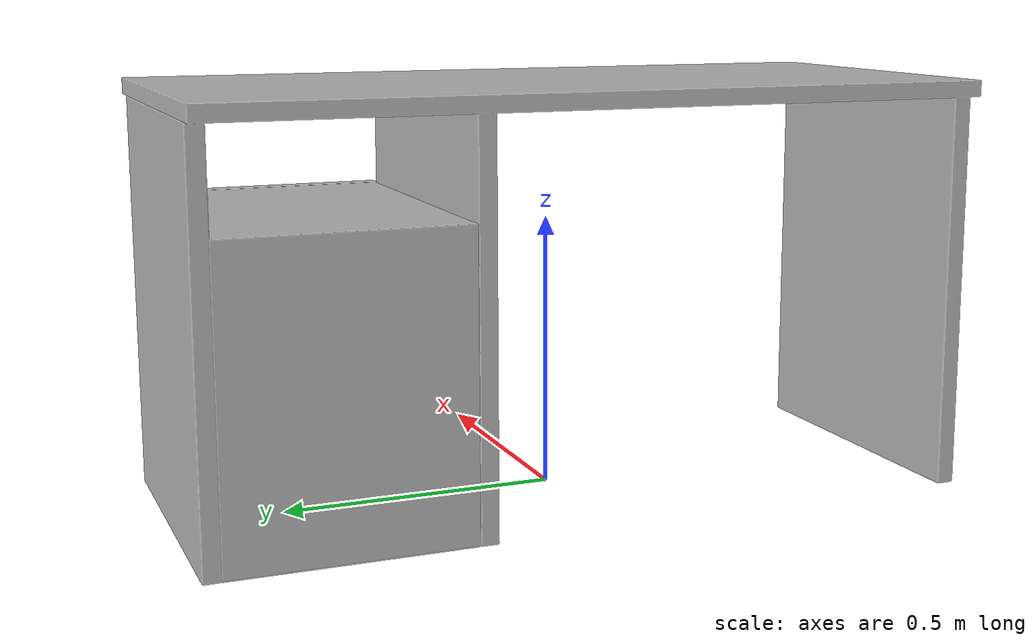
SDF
<?xml version='1.0'?>
<sdf version='1.4'>
  <model name='108'>
    <pose>0 0 0 0 0 0</pose>
    <static>true</static>
    <link name='link'>
      <collision name='collision'>
        <pose>0 0 0 0 0 0</pose>
        <geometry>
          <box>
            <size>0.66 1.4 2</size>
          </box>
        </geometry>
      </collision>
      <visual name='visual'>
        <pose>0 0 0 0 0 0</pose>
        <geometry>
          <mesh><uri>model://108/108.dae</uri></mesh>
        </geometry>
      </visual>
    </link>
  </model>
</sdf>
